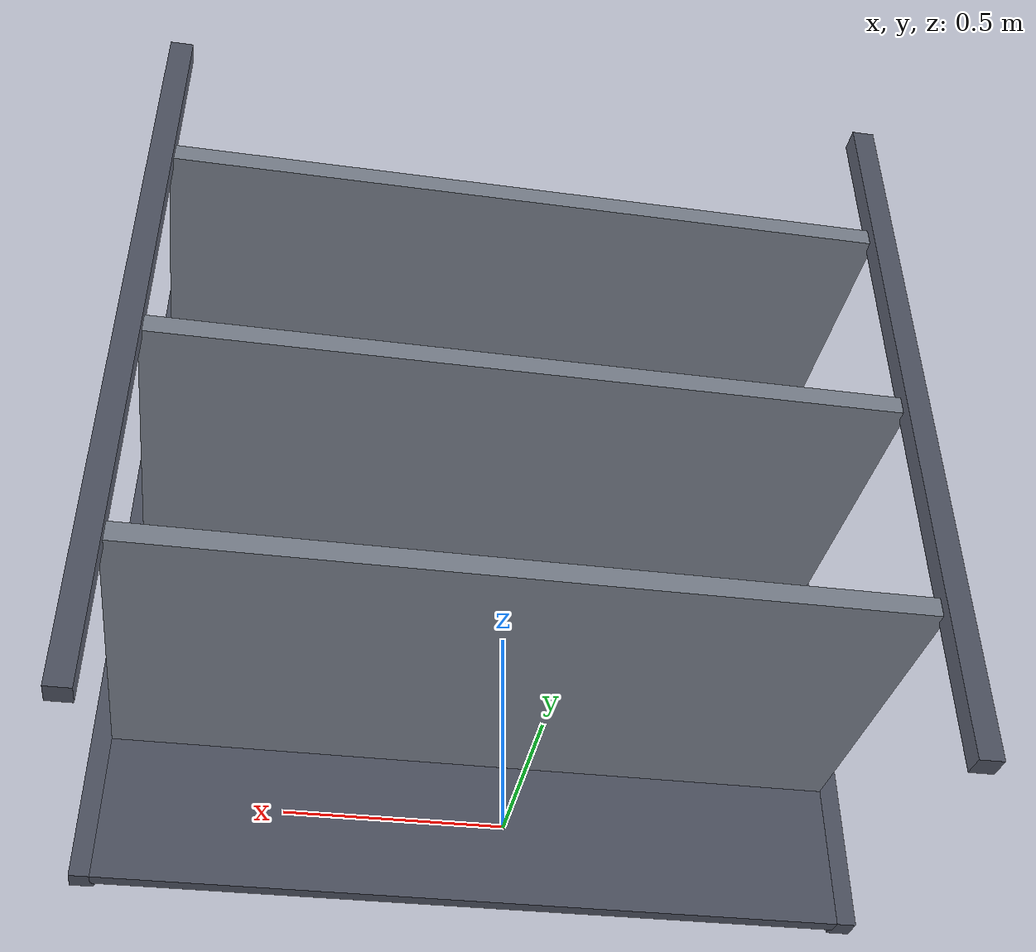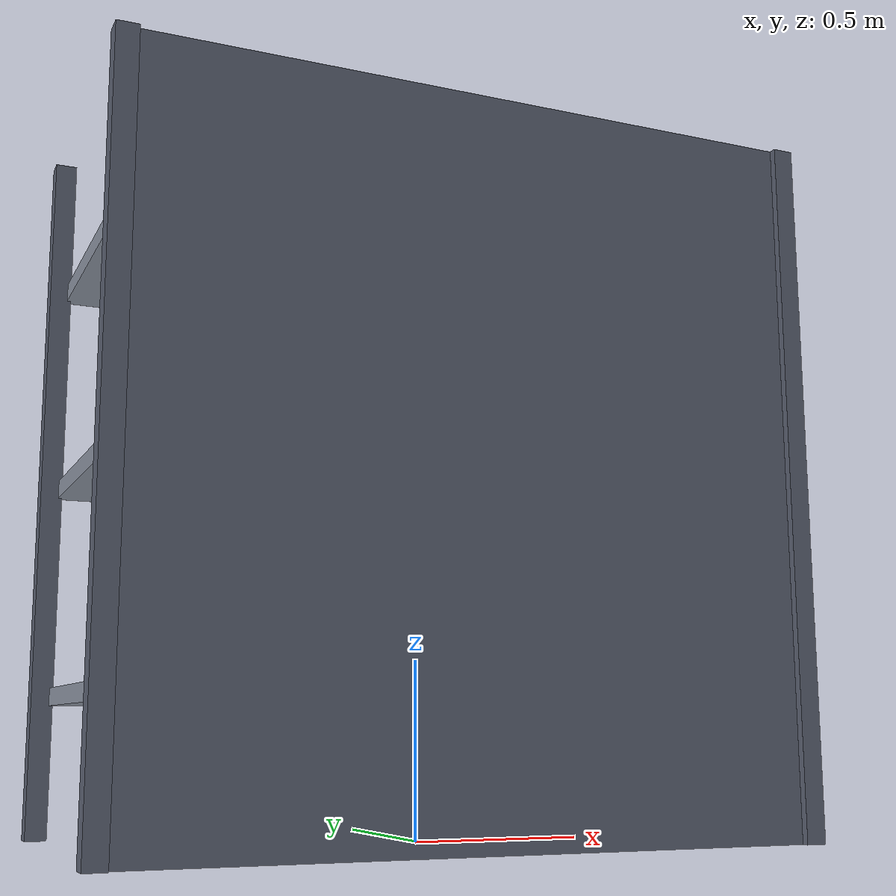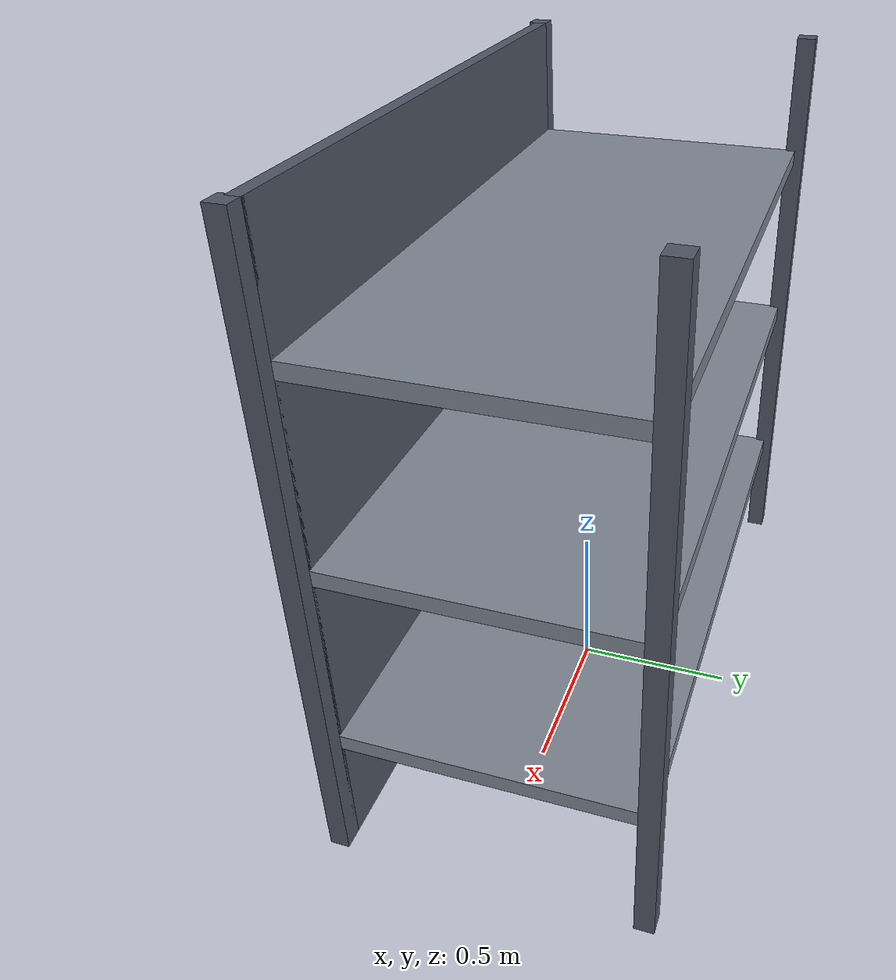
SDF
<?xml version="1.0" ?>
<sdf version="1.6">
<model name="rack">
  <static>true</static>
  <link name="link">
    <collision name="footprint">
      <pose>0 0 1.0 0 0 0</pose>
      <geometry><box><size>1.96 0.96 2.0</size></box></geometry>
    </collision>
<visual name="post_nw">
<pose>-0.97 0.47 1.0 0 0 0</pose>
<geometry><box><size>0.06 0.06 2.0</size></box></geometry>
<material><ambient>0.15 0.16 0.2 1</ambient>
<diffuse>0.32 0.34 0.4 1</diffuse>
<specular>0.25 0.25 0.25 1</specular></material>
</visual>
<visual name="post_ne">
<pose> 0.97 0.47 1.0 0 0 0</pose>
<geometry><box><size>0.06 0.06 2.0</size></box></geometry>
<material><ambient>0.15 0.16 0.2 1</ambient>
<diffuse>0.32 0.34 0.4 1</diffuse>
<specular>0.25 0.25 0.25 1</specular></material>
</visual>
<visual name="post_sw">
<pose>-0.97 -0.47 1.0 0 0 0</pose>
<geometry><box><size>0.06 0.06 2.0</size></box></geometry>
<material><ambient>0.15 0.16 0.2 1</ambient>
<diffuse>0.32 0.34 0.4 1</diffuse>
<specular>0.25 0.25 0.25 1</specular></material>
</visual>
<visual name="post_se">
<pose> 0.97 -0.47 1.0 0 0 0</pose>
<geometry><box><size>0.06 0.06 2.0</size></box></geometry>
<material><ambient>0.15 0.16 0.2 1</ambient>
<diffuse>0.32 0.34 0.4 1</diffuse>
<specular>0.25 0.25 0.25 1</specular></material>
</visual>
<visual name="shelf1">
<pose>0 0 0.4 0 0 0</pose>
<geometry><box><size>1.9 0.94 0.05</size></box></geometry>
<material><ambient>0.25 0.27 0.3 1</ambient>
<diffuse>0.5 0.53 0.58 1</diffuse>
<specular>0.3 0.3 0.3 1</specular></material>
</visual>
<visual name="shelf2">
<pose>0 0 1.0 0 0 0</pose>
<geometry><box><size>1.9 0.94 0.05</size></box></geometry>
<material><ambient>0.25 0.27 0.3 1</ambient>
<diffuse>0.5 0.53 0.58 1</diffuse>
<specular>0.3 0.3 0.3 1</specular></material>
</visual>
<visual name="shelf3">
<pose>0 0 1.6 0 0 0</pose>
<geometry><box><size>1.9 0.94 0.05</size></box></geometry>
<material><ambient>0.25 0.27 0.3 1</ambient>
<diffuse>0.5 0.53 0.58 1</diffuse>
<specular>0.3 0.3 0.3 1</specular></material>
</visual>
<visual name="back_panel">
<pose>0 -0.46 1.0 0 0 0</pose>
<geometry><box><size>1.9 0.04 2.0</size></box></geometry>
<material><ambient>0.15 0.16 0.2 1</ambient>
<diffuse>0.32 0.34 0.4 1</diffuse>
<specular>0.25 0.25 0.25 1</specular></material>
</visual>
  </link>
</model>
</sdf>
